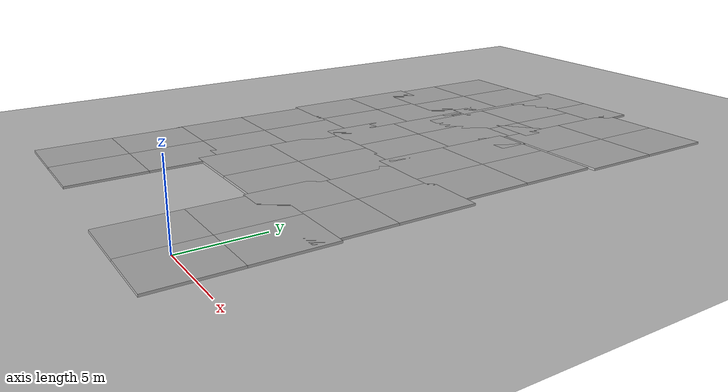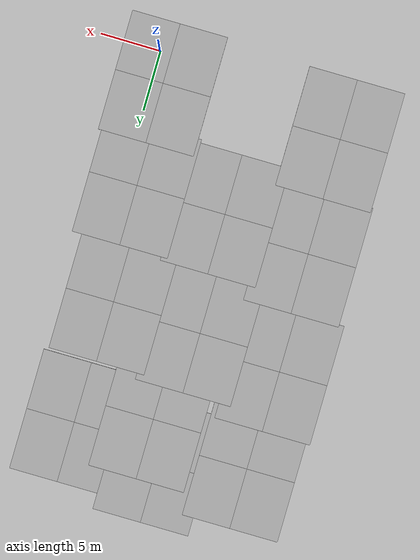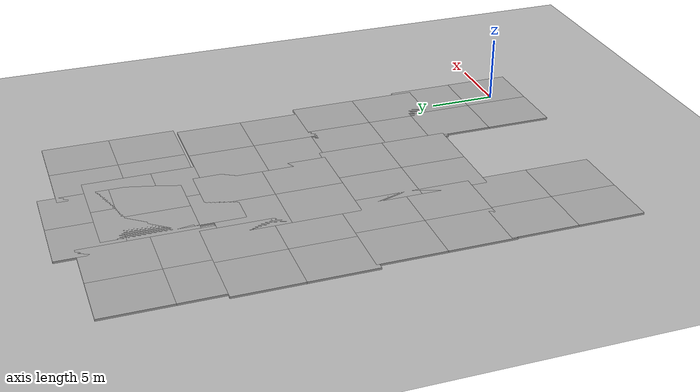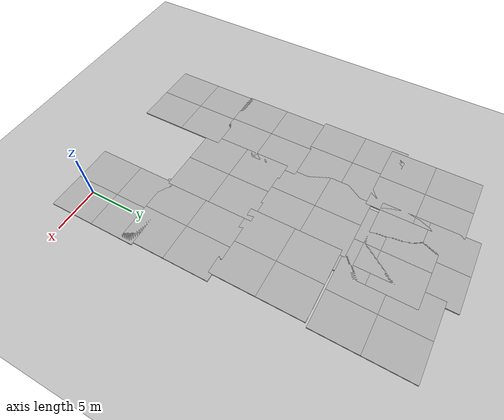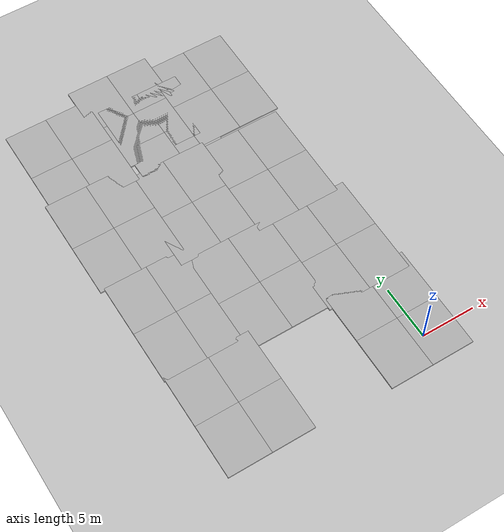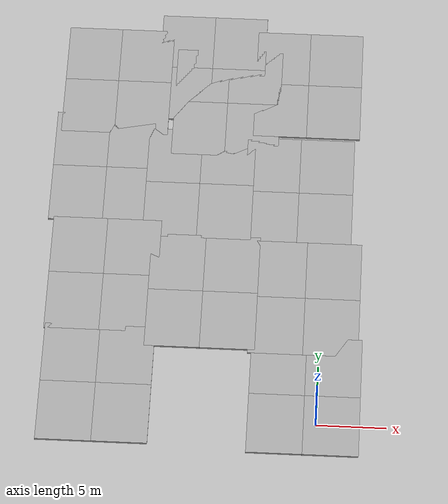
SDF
<sdf version="1.6">
 <world name="default">
  <model name="ground_plane">
   <static>1</static>
   <link name="link">
    <collision name="collision">
     <geometry><plane><normal>0 0 1</normal><size>100 100</size></plane></geometry>
     <surface><friction><ode><mu>100</mu><mu2>50</mu2></ode></friction></surface>
    </collision>
    <visual name="visual">
     <cast_shadows>0</cast_shadows>
     <geometry><plane><normal>0 0 1</normal><size>100 100</size></plane></geometry>
     <material>
      <script><uri>file://media/materials/scripts/gazebo.material</uri><name>Gazebo/Grey</name></script>
     </material>
    </visual>
   </link>
  </model>
  <model name="mud_box_clone_0">
   <static>1</static>
   <link name="link">
    <collision name="collision"><geometry><box><size>8 10 0.2</size></box></geometry></collision>
    <visual name="visual_1">
     <pose>-2 2.5 0 0 -0 0</pose>
     <cast_shadows>0</cast_shadows>
     <geometry><box><size>4 5 0.2</size></box></geometry>
     <material>
      <script>
       <uri>model://mud_box/materials/scripts</uri>
       <uri>model://mud_box/materials/textures</uri>
       <name>vrc/mud</name>
      </script>
     </material>
    </visual>
    <visual name="visual_2">
     <pose>2 2.5 0 0 -0 0</pose>
     <cast_shadows>0</cast_shadows>
     <geometry><box><size>4 5 0.2</size></box></geometry>
     <material>
      <script>
       <uri>model://mud_box/materials/scripts</uri>
       <uri>model://mud_box/materials/textures</uri>
       <name>vrc/mud</name>
      </script>
     </material>
    </visual>
    <visual name="visual_3">
     <pose>2 -2.5 0 0 -0 0</pose>
     <cast_shadows>0</cast_shadows>
     <geometry><box><size>4 5 0.2</size></box></geometry>
     <material>
      <script>
       <uri>model://mud_box/materials/scripts</uri>
       <uri>model://mud_box/materials/textures</uri>
       <name>vrc/mud</name>
      </script>
     </material>
    </visual>
    <visual name="visual_4">
     <pose>-2 -2.5 0 0 -0 0</pose>
     <cast_shadows>0</cast_shadows>
     <geometry><box><size>4 5 0.2</size></box></geometry>
     <material>
      <script>
       <uri>model://mud_box/materials/scripts</uri>
       <uri>model://mud_box/materials/textures</uri>
       <name>vrc/mud</name>
      </script>
     </material>
    </visual>
   </link>
   <pose>-0.907816 2.44072 0 0 -0 0</pose>
  </model>
  <model name="mud_box_clone_12">
   <static>1</static>
   <link name="link">
    <collision name="collision"><geometry><box><size>8 10 0.2</size></box></geometry></collision>
    <visual name="visual_1">
     <pose>-2 2.5 0 0 -0 0</pose>
     <cast_shadows>0</cast_shadows>
     <geometry><box><size>4 5 0.2</size></box></geometry>
     <material>
      <script>
       <uri>model://mud_box/materials/scripts</uri>
       <uri>model://mud_box/materials/textures</uri>
       <name>vrc/mud</name>
      </script>
     </material>
    </visual>
    <visual name="visual_2">
     <pose>2 2.5 0 0 -0 0</pose>
     <cast_shadows>0</cast_shadows>
     <geometry><box><size>4 5 0.2</size></box></geometry>
     <material>
      <script>
       <uri>model://mud_box/materials/scripts</uri>
       <uri>model://mud_box/materials/textures</uri>
       <name>vrc/mud</name>
      </script>
     </material>
    </visual>
    <visual name="visual_3">
     <pose>2 -2.5 0 0 -0 0</pose>
     <cast_shadows>0</cast_shadows>
     <geometry><box><size>4 5 0.2</size></box></geometry>
     <material>
      <script>
       <uri>model://mud_box/materials/scripts</uri>
       <uri>model://mud_box/materials/textures</uri>
       <name>vrc/mud</name>
      </script>
     </material>
    </visual>
    <visual name="visual_4">
     <pose>-2 -2.5 0 0 -0 0</pose>
     <cast_shadows>0</cast_shadows>
     <geometry><box><size>4 5 0.2</size></box></geometry>
     <material>
      <script>
       <uri>model://mud_box/materials/scripts</uri>
       <uri>model://mud_box/materials/textures</uri>
       <name>vrc/mud</name>
      </script>
     </material>
    </visual>
   </link>
   <pose>-15.9101 2.82816 0 0 -0 0</pose>
  </model>
  <model name="mud_box_clone_17">
   <static>1</static>
   <link name="link">
    <collision name="collision"><geometry><box><size>8 10 0.2</size></box></geometry></collision>
    <visual name="visual_1">
     <pose>-2 2.5 0 0 -0 0</pose>
     <cast_shadows>0</cast_shadows>
     <geometry><box><size>4 5 0.2</size></box></geometry>
     <material>
      <script>
       <uri>model://mud_box/materials/scripts</uri>
       <uri>model://mud_box/materials/textures</uri>
       <name>vrc/mud</name>
      </script>
     </material>
    </visual>
    <visual name="visual_2">
     <pose>2 2.5 0 0 -0 0</pose>
     <cast_shadows>0</cast_shadows>
     <geometry><box><size>4 5 0.2</size></box></geometry>
     <material>
      <script>
       <uri>model://mud_box/materials/scripts</uri>
       <uri>model://mud_box/materials/textures</uri>
       <name>vrc/mud</name>
      </script>
     </material>
    </visual>
    <visual name="visual_3">
     <pose>2 -2.5 0 0 -0 0</pose>
     <cast_shadows>0</cast_shadows>
     <geometry><box><size>4 5 0.2</size></box></geometry>
     <material>
      <script>
       <uri>model://mud_box/materials/scripts</uri>
       <uri>model://mud_box/materials/textures</uri>
       <name>vrc/mud</name>
      </script>
     </material>
    </visual>
    <visual name="visual_4">
     <pose>-2 -2.5 0 0 -0 0</pose>
     <cast_shadows>0</cast_shadows>
     <geometry><box><size>4 5 0.2</size></box></geometry>
     <material>
      <script>
       <uri>model://mud_box/materials/scripts</uri>
       <uri>model://mud_box/materials/textures</uri>
       <name>vrc/mud</name>
      </script>
     </material>
    </visual>
   </link>
   <pose>-1.17694 10.9468 0 0 -0 0</pose>
  </model>
  <model name="mud_box_clone_18">
   <static>1</static>
   <link name="link">
    <collision name="collision"><geometry><box><size>8 10 0.2</size></box></geometry></collision>
    <visual name="visual_1">
     <pose>-2 2.5 0 0 -0 0</pose>
     <cast_shadows>0</cast_shadows>
     <geometry><box><size>4 5 0.2</size></box></geometry>
     <material>
      <script>
       <uri>model://mud_box/materials/scripts</uri>
       <uri>model://mud_box/materials/textures</uri>
       <name>vrc/mud</name>
      </script>
     </material>
    </visual>
    <visual name="visual_2">
     <pose>2 2.5 0 0 -0 0</pose>
     <cast_shadows>0</cast_shadows>
     <geometry><box><size>4 5 0.2</size></box></geometry>
     <material>
      <script>
       <uri>model://mud_box/materials/scripts</uri>
       <uri>model://mud_box/materials/textures</uri>
       <name>vrc/mud</name>
      </script>
     </material>
    </visual>
    <visual name="visual_3">
     <pose>2 -2.5 0 0 -0 0</pose>
     <cast_shadows>0</cast_shadows>
     <geometry><box><size>4 5 0.2</size></box></geometry>
     <material>
      <script>
       <uri>model://mud_box/materials/scripts</uri>
       <uri>model://mud_box/materials/textures</uri>
       <name>vrc/mud</name>
      </script>
     </material>
    </visual>
    <visual name="visual_4">
     <pose>-2 -2.5 0 0 -0 0</pose>
     <cast_shadows>0</cast_shadows>
     <geometry><box><size>4 5 0.2</size></box></geometry>
     <material>
      <script>
       <uri>model://mud_box/materials/scripts</uri>
       <uri>model://mud_box/materials/textures</uri>
       <name>vrc/mud</name>
      </script>
     </material>
    </visual>
   </link>
   <pose>-8.65486 11.2273 0 0 -0 0</pose>
  </model>
  <model name="mud_box_clone_19">
   <static>1</static>
   <link name="link">
    <collision name="collision"><geometry><box><size>8 10 0.2</size></box></geometry></collision>
    <visual name="visual_1">
     <pose>-2 2.5 0 0 -0 0</pose>
     <cast_shadows>0</cast_shadows>
     <geometry><box><size>4 5 0.2</size></box></geometry>
     <material>
      <script>
       <uri>model://mud_box/materials/scripts</uri>
       <uri>model://mud_box/materials/textures</uri>
       <name>vrc/mud</name>
      </script>
     </material>
    </visual>
    <visual name="visual_2">
     <pose>2 2.5 0 0 -0 0</pose>
     <cast_shadows>0</cast_shadows>
     <geometry><box><size>4 5 0.2</size></box></geometry>
     <material>
      <script>
       <uri>model://mud_box/materials/scripts</uri>
       <uri>model://mud_box/materials/textures</uri>
       <name>vrc/mud</name>
      </script>
     </material>
    </visual>
    <visual name="visual_3">
     <pose>2 -2.5 0 0 -0 0</pose>
     <cast_shadows>0</cast_shadows>
     <geometry><box><size>4 5 0.2</size></box></geometry>
     <material>
      <script>
       <uri>model://mud_box/materials/scripts</uri>
       <uri>model://mud_box/materials/textures</uri>
       <name>vrc/mud</name>
      </script>
     </material>
    </visual>
    <visual name="visual_4">
     <pose>-2 -2.5 0 0 -0 0</pose>
     <cast_shadows>0</cast_shadows>
     <geometry><box><size>4 5 0.2</size></box></geometry>
     <material>
      <script>
       <uri>model://mud_box/materials/scripts</uri>
       <uri>model://mud_box/materials/textures</uri>
       <name>vrc/mud</name>
      </script>
     </material>
    </visual>
   </link>
   <pose>-16 12.4301 0 0 -0 0</pose>
  </model>
  <model name="mud_box_clone_20">
   <static>1</static>
   <link name="link">
    <collision name="collision"><geometry><box><size>8 10 0.2</size></box></geometry></collision>
    <visual name="visual_1">
     <pose>-2 2.5 0 0 -0 0</pose>
     <cast_shadows>0</cast_shadows>
     <geometry><box><size>4 5 0.2</size></box></geometry>
     <material>
      <script>
       <uri>model://mud_box/materials/scripts</uri>
       <uri>model://mud_box/materials/textures</uri>
       <name>vrc/mud</name>
      </script>
     </material>
    </visual>
    <visual name="visual_2">
     <pose>2 2.5 0 0 -0 0</pose>
     <cast_shadows>0</cast_shadows>
     <geometry><box><size>4 5 0.2</size></box></geometry>
     <material>
      <script>
       <uri>model://mud_box/materials/scripts</uri>
       <uri>model://mud_box/materials/textures</uri>
       <name>vrc/mud</name>
      </script>
     </material>
    </visual>
    <visual name="visual_3">
     <pose>2 -2.5 0 0 -0 0</pose>
     <cast_shadows>0</cast_shadows>
     <geometry><box><size>4 5 0.2</size></box></geometry>
     <material>
      <script>
       <uri>model://mud_box/materials/scripts</uri>
       <uri>model://mud_box/materials/textures</uri>
       <name>vrc/mud</name>
      </script>
     </material>
    </visual>
    <visual name="visual_4">
     <pose>-2 -2.5 0 0 -0 0</pose>
     <cast_shadows>0</cast_shadows>
     <geometry><box><size>4 5 0.2</size></box></geometry>
     <material>
      <script>
       <uri>model://mud_box/materials/scripts</uri>
       <uri>model://mud_box/materials/textures</uri>
       <name>vrc/mud</name>
      </script>
     </material>
    </visual>
   </link>
   <pose>-1.98322 20.4975 0 0 -0 0</pose>
  </model>
  <model name="mud_box_clone_21">
   <static>1</static>
   <link name="link">
    <collision name="collision"><geometry><box><size>8 10 0.2</size></box></geometry></collision>
    <visual name="visual_1">
     <pose>-2 2.5 0 0 -0 0</pose>
     <cast_shadows>0</cast_shadows>
     <geometry><box><size>4 5 0.2</size></box></geometry>
     <material>
      <script>
       <uri>model://mud_box/materials/scripts</uri>
       <uri>model://mud_box/materials/textures</uri>
       <name>vrc/mud</name>
      </script>
     </material>
    </visual>
    <visual name="visual_2">
     <pose>2 2.5 0 0 -0 0</pose>
     <cast_shadows>0</cast_shadows>
     <geometry><box><size>4 5 0.2</size></box></geometry>
     <material>
      <script>
       <uri>model://mud_box/materials/scripts</uri>
       <uri>model://mud_box/materials/textures</uri>
       <name>vrc/mud</name>
      </script>
     </material>
    </visual>
    <visual name="visual_3">
     <pose>2 -2.5 0 0 -0 0</pose>
     <cast_shadows>0</cast_shadows>
     <geometry><box><size>4 5 0.2</size></box></geometry>
     <material>
      <script>
       <uri>model://mud_box/materials/scripts</uri>
       <uri>model://mud_box/materials/textures</uri>
       <name>vrc/mud</name>
      </script>
     </material>
    </visual>
    <visual name="visual_4">
     <pose>-2 -2.5 0 0 -0 0</pose>
     <cast_shadows>0</cast_shadows>
     <geometry><box><size>4 5 0.2</size></box></geometry>
     <material>
      <script>
       <uri>model://mud_box/materials/scripts</uri>
       <uri>model://mud_box/materials/textures</uri>
       <name>vrc/mud</name>
      </script>
     </material>
    </visual>
   </link>
   <pose>-9.39199 21.0113 0 0 -0 0</pose>
  </model>
  <model name="mud_box_clone_8_clone_clone_4">
   <static>1</static>
   <link name="link">
    <collision name="collision"><geometry><box><size>8 10 0.2</size></box></geometry></collision>
    <visual name="visual_1">
     <pose>-2 2.5 0 0 -0 0</pose>
     <cast_shadows>0</cast_shadows>
     <geometry><box><size>4 5 0.2</size></box></geometry>
     <material>
      <script>
       <uri>model://mud_box/materials/scripts</uri>
       <uri>model://mud_box/materials/textures</uri>
       <name>vrc/mud</name>
      </script>
     </material>
    </visual>
    <visual name="visual_2">
     <pose>2 2.5 0 0 -0 0</pose>
     <cast_shadows>0</cast_shadows>
     <geometry><box><size>4 5 0.2</size></box></geometry>
     <material>
      <script>
       <uri>model://mud_box/materials/scripts</uri>
       <uri>model://mud_box/materials/textures</uri>
       <name>vrc/mud</name>
      </script>
     </material>
    </visual>
    <visual name="visual_3">
     <pose>2 -2.5 0 0 -0 0</pose>
     <cast_shadows>0</cast_shadows>
     <geometry><box><size>4 5 0.2</size></box></geometry>
     <material>
      <script>
       <uri>model://mud_box/materials/scripts</uri>
       <uri>model://mud_box/materials/textures</uri>
       <name>vrc/mud</name>
      </script>
     </material>
    </visual>
    <visual name="visual_4">
     <pose>-2 -2.5 0 0 -0 0</pose>
     <cast_shadows>0</cast_shadows>
     <geometry><box><size>4 5 0.2</size></box></geometry>
     <material>
      <script>
       <uri>model://mud_box/materials/scripts</uri>
       <uri>model://mud_box/materials/textures</uri>
       <name>vrc/mud</name>
      </script>
     </material>
    </visual>
   </link>
   <pose>-16.4157 22.2203 0 0 -0 0</pose>
  </model>
  <model name="mud_box_clone_8_clone_clone_5">
   <static>1</static>
   <link name="link">
    <collision name="collision"><geometry><box><size>8 10 0.2</size></box></geometry></collision>
    <visual name="visual_1">
     <pose>-2 2.5 0 0 -0 0</pose>
     <cast_shadows>0</cast_shadows>
     <geometry><box><size>4 5 0.2</size></box></geometry>
     <material>
      <script>
       <uri>model://mud_box/materials/scripts</uri>
       <uri>model://mud_box/materials/textures</uri>
       <name>vrc/mud</name>
      </script>
     </material>
    </visual>
    <visual name="visual_2">
     <pose>2 2.5 0 0 -0 0</pose>
     <cast_shadows>0</cast_shadows>
     <geometry><box><size>4 5 0.2</size></box></geometry>
     <material>
      <script>
       <uri>model://mud_box/materials/scripts</uri>
       <uri>model://mud_box/materials/textures</uri>
       <name>vrc/mud</name>
      </script>
     </material>
    </visual>
    <visual name="visual_3">
     <pose>2 -2.5 0 0 -0 0</pose>
     <cast_shadows>0</cast_shadows>
     <geometry><box><size>4 5 0.2</size></box></geometry>
     <material>
      <script>
       <uri>model://mud_box/materials/scripts</uri>
       <uri>model://mud_box/materials/textures</uri>
       <name>vrc/mud</name>
      </script>
     </material>
    </visual>
    <visual name="visual_4">
     <pose>-2 -2.5 0 0 -0 0</pose>
     <cast_shadows>0</cast_shadows>
     <geometry><box><size>4 5 0.2</size></box></geometry>
     <material>
      <script>
       <uri>model://mud_box/materials/scripts</uri>
       <uri>model://mud_box/materials/textures</uri>
       <name>vrc/mud</name>
      </script>
     </material>
    </visual>
   </link>
   <pose>-16.0684 30.4708 0 0 -0 0</pose>
  </model>
  <model name="mud_box_clone_8_clone_clone_6">
   <static>1</static>
   <link name="link">
    <collision name="collision"><geometry><box><size>8 10 0.2</size></box></geometry></collision>
    <visual name="visual_1">
     <pose>-2 2.5 0 0 -0 0</pose>
     <cast_shadows>0</cast_shadows>
     <geometry><box><size>4 5 0.2</size></box></geometry>
     <material>
      <script>
       <uri>model://mud_box/materials/scripts</uri>
       <uri>model://mud_box/materials/textures</uri>
       <name>vrc/mud</name>
      </script>
     </material>
    </visual>
    <visual name="visual_2">
     <pose>2 2.5 0 0 -0 0</pose>
     <cast_shadows>0</cast_shadows>
     <geometry><box><size>4 5 0.2</size></box></geometry>
     <material>
      <script>
       <uri>model://mud_box/materials/scripts</uri>
       <uri>model://mud_box/materials/textures</uri>
       <name>vrc/mud</name>
      </script>
     </material>
    </visual>
    <visual name="visual_3">
     <pose>2 -2.5 0 0 -0 0</pose>
     <cast_shadows>0</cast_shadows>
     <geometry><box><size>4 5 0.2</size></box></geometry>
     <material>
      <script>
       <uri>model://mud_box/materials/scripts</uri>
       <uri>model://mud_box/materials/textures</uri>
       <name>vrc/mud</name>
      </script>
     </material>
    </visual>
    <visual name="visual_4">
     <pose>-2 -2.5 0 0 -0 0</pose>
     <cast_shadows>0</cast_shadows>
     <geometry><box><size>4 5 0.2</size></box></geometry>
     <material>
      <script>
       <uri>model://mud_box/materials/scripts</uri>
       <uri>model://mud_box/materials/textures</uri>
       <name>vrc/mud</name>
      </script>
     </material>
    </visual>
   </link>
   <pose>-7.69518 28.72 0 0 -0 0</pose>
  </model>
  <model name="mud_box_clone_8_clone_clone_7">
   <static>1</static>
   <link name="link">
    <collision name="collision"><geometry><box><size>8 10 0.2</size></box></geometry></collision>
    <visual name="visual_1">
     <pose>-2 2.5 0 0 -0 0</pose>
     <cast_shadows>0</cast_shadows>
     <geometry><box><size>4 5 0.2</size></box></geometry>
     <material>
      <script>
       <uri>model://mud_box/materials/scripts</uri>
       <uri>model://mud_box/materials/textures</uri>
       <name>vrc/mud</name>
      </script>
     </material>
    </visual>
    <visual name="visual_2">
     <pose>2 2.5 0 0 -0 0</pose>
     <cast_shadows>0</cast_shadows>
     <geometry><box><size>4 5 0.2</size></box></geometry>
     <material>
      <script>
       <uri>model://mud_box/materials/scripts</uri>
       <uri>model://mud_box/materials/textures</uri>
       <name>vrc/mud</name>
      </script>
     </material>
    </visual>
    <visual name="visual_3">
     <pose>2 -2.5 0 0 -0 0</pose>
     <cast_shadows>0</cast_shadows>
     <geometry><box><size>4 5 0.2</size></box></geometry>
     <material>
      <script>
       <uri>model://mud_box/materials/scripts</uri>
       <uri>model://mud_box/materials/textures</uri>
       <name>vrc/mud</name>
      </script>
     </material>
    </visual>
    <visual name="visual_4">
     <pose>-2 -2.5 0 0 -0 0</pose>
     <cast_shadows>0</cast_shadows>
     <geometry><box><size>4 5 0.2</size></box></geometry>
     <material>
      <script>
       <uri>model://mud_box/materials/scripts</uri>
       <uri>model://mud_box/materials/textures</uri>
       <name>vrc/mud</name>
      </script>
     </material>
    </visual>
   </link>
   <pose>-9 32 0 0 -0 0</pose>
  </model>
  <model name="mud_box_clone_8_clone_clone_8">
   <static>1</static>
   <link name="link">
    <collision name="collision"><geometry><box><size>8 10 0.2</size></box></geometry></collision>
    <visual name="visual_1">
     <pose>-2 2.5 0 0 -0 0</pose>
     <cast_shadows>0</cast_shadows>
     <geometry><box><size>4 5 0.2</size></box></geometry>
     <material>
      <script>
       <uri>model://mud_box/materials/scripts</uri>
       <uri>model://mud_box/materials/textures</uri>
       <name>vrc/mud</name>
      </script>
     </material>
    </visual>
    <visual name="visual_2">
     <pose>2 2.5 0 0 -0 0</pose>
     <cast_shadows>0</cast_shadows>
     <geometry><box><size>4 5 0.2</size></box></geometry>
     <material>
      <script>
       <uri>model://mud_box/materials/scripts</uri>
       <uri>model://mud_box/materials/textures</uri>
       <name>vrc/mud</name>
      </script>
     </material>
    </visual>
    <visual name="visual_3">
     <pose>2 -2.5 0 0 -0 0</pose>
     <cast_shadows>0</cast_shadows>
     <geometry><box><size>4 5 0.2</size></box></geometry>
     <material>
      <script>
       <uri>model://mud_box/materials/scripts</uri>
       <uri>model://mud_box/materials/textures</uri>
       <name>vrc/mud</name>
      </script>
     </material>
    </visual>
    <visual name="visual_4">
     <pose>-2 -2.5 0 0 -0 0</pose>
     <cast_shadows>0</cast_shadows>
     <geometry><box><size>4 5 0.2</size></box></geometry>
     <material>
      <script>
       <uri>model://mud_box/materials/scripts</uri>
       <uri>model://mud_box/materials/textures</uri>
       <name>vrc/mud</name>
      </script>
     </material>
    </visual>
   </link>
   <pose>-1.63091 30.7104 0 0 -0 0</pose>
  </model>
 </world>
</sdf>
